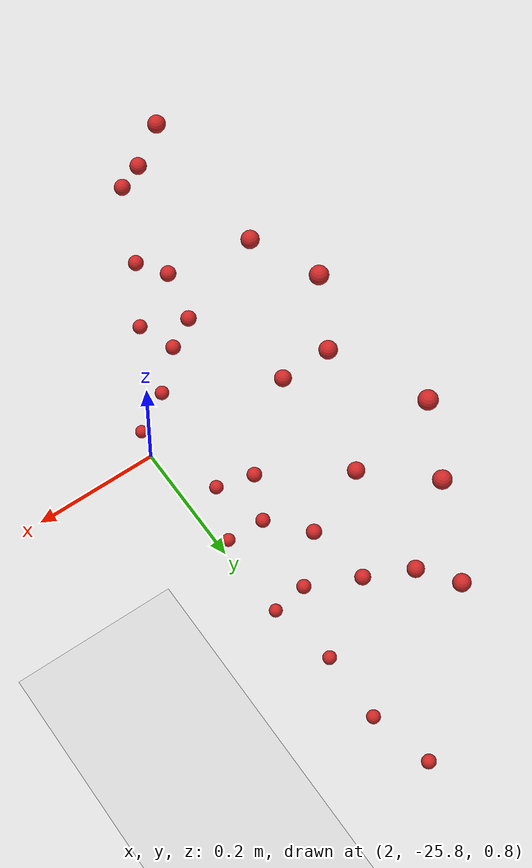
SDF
<sdf version="1.4">
 <world name="default">
  <model name="ground_plane">
   <static>1</static>
   <link name="link">
    <collision name="collision">
     <geometry><plane><normal>0 0 1</normal><size>100 100</size></plane></geometry>
     <surface><friction><ode><mu>100</mu><mu2>50</mu2></ode></friction></surface>
    </collision>
    <visual name="visual">
     <cast_shadows>0</cast_shadows>
     <geometry><plane><normal>0 0 1</normal><size>100 100</size></plane></geometry>
     <material>
      <script><uri>file://media/materials/scripts/gazebo.material</uri><name>Gazebo/Grey</name></script>
     </material>
    </visual>
    <velocity_decay><linear>0</linear><angular>0</angular></velocity_decay>
   </link>
  </model>
  <model name="apple592">
   <link name="my_apple">
    <inertial>
     <pose>2 0 0 0 -0 0</pose>
     <mass>1</mass>
     <inertia><ixx>1</ixx><ixy>0</ixy><ixz>0</ixz><iyy>1</iyy><iyz>0</iyz><izz>1</izz></inertia>
    </inertial>
    <collision name="my_apple_collision">
     <pose>2 0 1 0 -0 0</pose>
     <geometry><sphere><radius>0.01</radius></sphere></geometry>
    </collision>
    <visual name="my_apple_visual">
     <pose>2 0 1 0 -0 0</pose>
     <geometry><sphere><radius>0.01</radius></sphere></geometry>
     <material><script><name>Gazebo/Red</name><uri>__default__</uri></script></material>
    </visual>
    <gravity>0</gravity>
    <velocity_decay><linear>0</linear><angular>0</angular></velocity_decay>
   </link>
   <pose>0 -25.8256 0.449866 0 -0 0</pose>
   <static>0</static>
  </model>
  <model name="apple594">
   <link name="my_apple">
    <inertial>
     <pose>2 0 0 0 -0 0</pose>
     <mass>1</mass>
     <inertia><ixx>1</ixx><ixy>0</ixy><ixz>0</ixz><iyy>1</iyy><iyz>0</iyz><izz>1</izz></inertia>
    </inertial>
    <collision name="my_apple_collision">
     <pose>2 0 1 0 -0 0</pose>
     <geometry><sphere><radius>0.01</radius></sphere></geometry>
    </collision>
    <visual name="my_apple_visual">
     <pose>2 0 1 0 -0 0</pose>
     <geometry><sphere><radius>0.01</radius></sphere></geometry>
     <material><script><name>Gazebo/Red</name><uri>__default__</uri></script></material>
    </visual>
    <gravity>0</gravity>
    <velocity_decay><linear>0</linear><angular>0</angular></velocity_decay>
   </link>
   <pose>0 -25.8065 0.162456 0 -0 0</pose>
   <static>0</static>
  </model>
  <model name="apple596">
   <link name="my_apple">
    <inertial>
     <pose>2 0 0 0 -0 0</pose>
     <mass>1</mass>
     <inertia><ixx>1</ixx><ixy>0</ixy><ixz>0</ixz><iyy>1</iyy><iyz>0</iyz><izz>1</izz></inertia>
    </inertial>
    <collision name="my_apple_collision">
     <pose>2 0 1 0 -0 0</pose>
     <geometry><sphere><radius>0.01</radius></sphere></geometry>
    </collision>
    <visual name="my_apple_visual">
     <pose>2 0 1 0 -0 0</pose>
     <geometry><sphere><radius>0.01</radius></sphere></geometry>
     <material><script><name>Gazebo/Red</name><uri>__default__</uri></script></material>
    </visual>
    <gravity>0</gravity>
    <velocity_decay><linear>0</linear><angular>0</angular></velocity_decay>
   </link>
   <pose>0 -25.8057 0.313953 0 -0 0</pose>
   <static>0</static>
  </model>
  <model name="apple597">
   <link name="my_apple">
    <inertial>
     <pose>2 0 0 0 -0 0</pose>
     <mass>1</mass>
     <inertia><ixx>1</ixx><ixy>0</ixy><ixz>0</ixz><iyy>1</iyy><iyz>0</iyz><izz>1</izz></inertia>
    </inertial>
    <collision name="my_apple_collision">
     <pose>2 0 1 0 -0 0</pose>
     <geometry><sphere><radius>0.01</radius></sphere></geometry>
    </collision>
    <visual name="my_apple_visual">
     <pose>2 0 1 0 -0 0</pose>
     <geometry><sphere><radius>0.01</radius></sphere></geometry>
     <material><script><name>Gazebo/Red</name><uri>__default__</uri></script></material>
    </visual>
    <gravity>0</gravity>
    <velocity_decay><linear>0</linear><angular>0</angular></velocity_decay>
   </link>
   <pose>0 -25.7848 0.534704 0 -0 0</pose>
   <static>0</static>
  </model>
  <model name="apple598">
   <link name="my_apple">
    <inertial>
     <pose>2 0 0 0 -0 0</pose>
     <mass>1</mass>
     <inertia><ixx>1</ixx><ixy>0</ixy><ixz>0</ixz><iyy>1</iyy><iyz>0</iyz><izz>1</izz></inertia>
    </inertial>
    <collision name="my_apple_collision">
     <pose>2 0 1 0 -0 0</pose>
     <geometry><sphere><radius>0.01</radius></sphere></geometry>
    </collision>
    <visual name="my_apple_visual">
     <pose>2 0 1 0 -0 0</pose>
     <geometry><sphere><radius>0.01</radius></sphere></geometry>
     <material><script><name>Gazebo/Red</name><uri>__default__</uri></script></material>
    </visual>
    <gravity>0</gravity>
    <velocity_decay><linear>0</linear><angular>0</angular></velocity_decay>
   </link>
   <pose>0 -25.729 0.383208 0 -0 0</pose>
   <static>0</static>
  </model>
  <model name="apple599">
   <link name="my_apple">
    <inertial>
     <pose>2 0 0 0 -0 0</pose>
     <mass>1</mass>
     <inertia><ixx>1</ixx><ixy>0</ixy><ixz>0</ixz><iyy>1</iyy><iyz>0</iyz><izz>1</izz></inertia>
    </inertial>
    <collision name="my_apple_collision">
     <pose>2 0 1 0 -0 0</pose>
     <geometry><sphere><radius>0.01</radius></sphere></geometry>
    </collision>
    <visual name="my_apple_visual">
     <pose>2 0 1 0 -0 0</pose>
     <geometry><sphere><radius>0.01</radius></sphere></geometry>
     <material><script><name>Gazebo/Red</name><uri>__default__</uri></script></material>
    </visual>
    <gravity>0</gravity>
    <velocity_decay><linear>0</linear><angular>0</angular></velocity_decay>
   </link>
   <pose>0 -25.6856 0.338192 0 -0 0</pose>
   <static>0</static>
  </model>
  <model name="apple601">
   <link name="my_apple">
    <inertial>
     <pose>2 0 0 0 -0 0</pose>
     <mass>1</mass>
     <inertia><ixx>1</ixx><ixy>0</ixy><ixz>0</ixz><iyy>1</iyy><iyz>0</iyz><izz>1</izz></inertia>
    </inertial>
    <collision name="my_apple_collision">
     <pose>2 0 1 0 -0 0</pose>
     <geometry><sphere><radius>0.01</radius></sphere></geometry>
    </collision>
    <visual name="my_apple_visual">
     <pose>2 0 1 0 -0 0</pose>
     <geometry><sphere><radius>0.01</radius></sphere></geometry>
     <material><script><name>Gazebo/Red</name><uri>__default__</uri></script></material>
    </visual>
    <gravity>0</gravity>
    <velocity_decay><linear>0</linear><angular>0</angular></velocity_decay>
   </link>
   <pose>0 -25.5922 -0.136776 0 -0 0</pose>
   <static>0</static>
  </model>
  <model name="apple602">
   <link name="my_apple">
    <inertial>
     <pose>2 0 0 0 -0 0</pose>
     <mass>1</mass>
     <inertia><ixx>1</ixx><ixy>0</ixy><ixz>0</ixz><iyy>1</iyy><iyz>0</iyz><izz>1</izz></inertia>
    </inertial>
    <collision name="my_apple_collision">
     <pose>2 0 1 0 -0 0</pose>
     <geometry><sphere><radius>0.01</radius></sphere></geometry>
    </collision>
    <visual name="my_apple_visual">
     <pose>2 0 1 0 -0 0</pose>
     <geometry><sphere><radius>0.01</radius></sphere></geometry>
     <material><script><name>Gazebo/Red</name><uri>__default__</uri></script></material>
    </visual>
    <gravity>0</gravity>
    <velocity_decay><linear>0</linear><angular>0</angular></velocity_decay>
   </link>
   <pose>0 -25.6238 -0.018761 0 -0 0</pose>
   <static>0</static>
  </model>
  <model name="apple603">
   <link name="my_apple">
    <inertial>
     <pose>2 0 0 0 -0 0</pose>
     <mass>1</mass>
     <inertia><ixx>1</ixx><ixy>0</ixy><ixz>0</ixz><iyy>1</iyy><iyz>0</iyz><izz>1</izz></inertia>
    </inertial>
    <collision name="my_apple_collision">
     <pose>2 0 1 0 -0 0</pose>
     <geometry><sphere><radius>0.01</radius></sphere></geometry>
    </collision>
    <visual name="my_apple_visual">
     <pose>2 0 1 0 -0 0</pose>
     <geometry><sphere><radius>0.01</radius></sphere></geometry>
     <material><script><name>Gazebo/Red</name><uri>__default__</uri></script></material>
    </visual>
    <gravity>0</gravity>
    <velocity_decay><linear>0</linear><angular>0</angular></velocity_decay>
   </link>
   <pose>0 -25.7581 0.053795 0 -0 0</pose>
   <static>0</static>
  </model>
  <model name="apple604">
   <link name="my_apple">
    <inertial>
     <pose>2 0 0 0 -0 0</pose>
     <mass>1</mass>
     <inertia><ixx>1</ixx><ixy>0</ixy><ixz>0</ixz><iyy>1</iyy><iyz>0</iyz><izz>1</izz></inertia>
    </inertial>
    <collision name="my_apple_collision">
     <pose>2 0 1 0 -0 0</pose>
     <geometry><sphere><radius>0.01</radius></sphere></geometry>
    </collision>
    <visual name="my_apple_visual">
     <pose>2 0 1 0 -0 0</pose>
     <geometry><sphere><radius>0.01</radius></sphere></geometry>
     <material><script><name>Gazebo/Red</name><uri>__default__</uri></script></material>
    </visual>
    <gravity>0</gravity>
    <velocity_decay><linear>0</linear><angular>0</angular></velocity_decay>
   </link>
   <pose>0 -25.5637 0.64649 0 -0 0</pose>
   <static>0</static>
  </model>
  <model name="apple605">
   <link name="my_apple">
    <inertial>
     <pose>2 0 0 0 -0 0</pose>
     <mass>1</mass>
     <inertia><ixx>1</ixx><ixy>0</ixy><ixz>0</ixz><iyy>1</iyy><iyz>0</iyz><izz>1</izz></inertia>
    </inertial>
    <collision name="my_apple_collision">
     <pose>2 0 1 0 -0 0</pose>
     <geometry><sphere><radius>0.01</radius></sphere></geometry>
    </collision>
    <visual name="my_apple_visual">
     <pose>2 0 1 0 -0 0</pose>
     <geometry><sphere><radius>0.01</radius></sphere></geometry>
     <material><script><name>Gazebo/Red</name><uri>__default__</uri></script></material>
    </visual>
    <gravity>0</gravity>
    <velocity_decay><linear>0</linear><angular>0</angular></velocity_decay>
   </link>
   <pose>0 -25.5377 0.15553 0 -0 0</pose>
   <static>0</static>
  </model>
  <model name="apple606">
   <link name="my_apple">
    <inertial>
     <pose>2 0 0 0 -0 0</pose>
     <mass>1</mass>
     <inertia><ixx>1</ixx><ixy>0</ixy><ixz>0</ixz><iyy>1</iyy><iyz>0</iyz><izz>1</izz></inertia>
    </inertial>
    <collision name="my_apple_collision">
     <pose>2 0 1 0 -0 0</pose>
     <geometry><sphere><radius>0.01</radius></sphere></geometry>
    </collision>
    <visual name="my_apple_visual">
     <pose>2 0 1 0 -0 0</pose>
     <geometry><sphere><radius>0.01</radius></sphere></geometry>
     <material><script><name>Gazebo/Red</name><uri>__default__</uri></script></material>
    </visual>
    <gravity>0</gravity>
    <velocity_decay><linear>0</linear><angular>0</angular></velocity_decay>
   </link>
   <pose>0 -25.5143 0.060304 0 -0 0</pose>
   <static>0</static>
  </model>
  <model name="apple607">
   <link name="my_apple">
    <inertial>
     <pose>2 0 0 0 -0 0</pose>
     <mass>1</mass>
     <inertia><ixx>1</ixx><ixy>0</ixy><ixz>0</ixz><iyy>1</iyy><iyz>0</iyz><izz>1</izz></inertia>
    </inertial>
    <collision name="my_apple_collision">
     <pose>2 0 1 0 -0 0</pose>
     <geometry><sphere><radius>0.01</radius></sphere></geometry>
    </collision>
    <visual name="my_apple_visual">
     <pose>2 0 1 0 -0 0</pose>
     <geometry><sphere><radius>0.01</radius></sphere></geometry>
     <material><script><name>Gazebo/Red</name><uri>__default__</uri></script></material>
    </visual>
    <gravity>0</gravity>
    <velocity_decay><linear>0</linear><angular>0</angular></velocity_decay>
   </link>
   <pose>0 -25.8233 -0.155133 0 -0 0</pose>
   <static>0</static>
  </model>
  <model name="apple608">
   <link name="my_apple">
    <inertial>
     <pose>2 0 0 0 -0 0</pose>
     <mass>1</mass>
     <inertia><ixx>1</ixx><ixy>0</ixy><ixz>0</ixz><iyy>1</iyy><iyz>0</iyz><izz>1</izz></inertia>
    </inertial>
    <collision name="my_apple_collision">
     <pose>2 0 1 0 -0 0</pose>
     <geometry><sphere><radius>0.01</radius></sphere></geometry>
    </collision>
    <visual name="my_apple_visual">
     <pose>2 0 1 0 -0 0</pose>
     <geometry><sphere><radius>0.01</radius></sphere></geometry>
     <material><script><name>Gazebo/Red</name><uri>__default__</uri></script></material>
    </visual>
    <gravity>0</gravity>
    <velocity_decay><linear>0</linear><angular>0</angular></velocity_decay>
   </link>
   <pose>0 -25.493 0.461164 0 -0 0</pose>
   <static>0</static>
  </model>
  <model name="apple610">
   <link name="my_apple">
    <inertial>
     <pose>2 0 0 0 -0 0</pose>
     <mass>1</mass>
     <inertia><ixx>1</ixx><ixy>0</ixy><ixz>0</ixz><iyy>1</iyy><iyz>0</iyz><izz>1</izz></inertia>
    </inertial>
    <collision name="my_apple_collision">
     <pose>2 0 1 0 -0 0</pose>
     <geometry><sphere><radius>0.01</radius></sphere></geometry>
    </collision>
    <visual name="my_apple_visual">
     <pose>2 0 1 0 -0 0</pose>
     <geometry><sphere><radius>0.01</radius></sphere></geometry>
     <material><script><name>Gazebo/Red</name><uri>__default__</uri></script></material>
    </visual>
    <gravity>0</gravity>
    <velocity_decay><linear>0</linear><angular>0</angular></velocity_decay>
   </link>
   <pose>0 -25.4719 -0.165605 0 -0 0</pose>
   <static>0</static>
  </model>
  <model name="apple611">
   <link name="my_apple">
    <inertial>
     <pose>2 0 0 0 -0 0</pose>
     <mass>1</mass>
     <inertia><ixx>1</ixx><ixy>0</ixy><ixz>0</ixz><iyy>1</iyy><iyz>0</iyz><izz>1</izz></inertia>
    </inertial>
    <collision name="my_apple_collision">
     <pose>2 0 1 0 -0 0</pose>
     <geometry><sphere><radius>0.01</radius></sphere></geometry>
    </collision>
    <visual name="my_apple_visual">
     <pose>2 0 1 0 -0 0</pose>
     <geometry><sphere><radius>0.01</radius></sphere></geometry>
     <material><script><name>Gazebo/Red</name><uri>__default__</uri></script></material>
    </visual>
    <gravity>0</gravity>
    <velocity_decay><linear>0</linear><angular>0</angular></velocity_decay>
   </link>
   <pose>0 -25.4483 0.720762 0 -0 0</pose>
   <static>0</static>
  </model>
  <model name="apple612">
   <link name="my_apple">
    <inertial>
     <pose>2 0 0 0 -0 0</pose>
     <mass>1</mass>
     <inertia><ixx>1</ixx><ixy>0</ixy><ixz>0</ixz><iyy>1</iyy><iyz>0</iyz><izz>1</izz></inertia>
    </inertial>
    <collision name="my_apple_collision">
     <pose>2 0 1 0 -0 0</pose>
     <geometry><sphere><radius>0.01</radius></sphere></geometry>
    </collision>
    <visual name="my_apple_visual">
     <pose>2 0 1 0 -0 0</pose>
     <geometry><sphere><radius>0.01</radius></sphere></geometry>
     <material><script><name>Gazebo/Red</name><uri>__default__</uri></script></material>
    </visual>
    <gravity>0</gravity>
    <velocity_decay><linear>0</linear><angular>0</angular></velocity_decay>
   </link>
   <pose>0 -25.4107 0.202914 0 -0 0</pose>
   <static>0</static>
  </model>
  <model name="apple613">
   <link name="my_apple">
    <inertial>
     <pose>2 0 0 0 -0 0</pose>
     <mass>1</mass>
     <inertia><ixx>1</ixx><ixy>0</ixy><ixz>0</ixz><iyy>1</iyy><iyz>0</iyz><izz>1</izz></inertia>
    </inertial>
    <collision name="my_apple_collision">
     <pose>2 0 1 0 -0 0</pose>
     <geometry><sphere><radius>0.01</radius></sphere></geometry>
    </collision>
    <visual name="my_apple_visual">
     <pose>2 0 1 0 -0 0</pose>
     <geometry><sphere><radius>0.01</radius></sphere></geometry>
     <material><script><name>Gazebo/Red</name><uri>__default__</uri></script></material>
    </visual>
    <gravity>0</gravity>
    <velocity_decay><linear>0</linear><angular>0</angular></velocity_decay>
   </link>
   <pose>0 -25.348 -0.090444 0 -0 0</pose>
   <static>0</static>
  </model>
  <model name="apple615">
   <link name="my_apple">
    <inertial>
     <pose>2 0 0 0 -0 0</pose>
     <mass>1</mass>
     <inertia><ixx>1</ixx><ixy>0</ixy><ixz>0</ixz><iyy>1</iyy><iyz>0</iyz><izz>1</izz></inertia>
    </inertial>
    <collision name="my_apple_collision">
     <pose>2 0 1 0 -0 0</pose>
     <geometry><sphere><radius>0.01</radius></sphere></geometry>
    </collision>
    <visual name="my_apple_visual">
     <pose>2 0 1 0 -0 0</pose>
     <geometry><sphere><radius>0.01</radius></sphere></geometry>
     <material><script><name>Gazebo/Red</name><uri>__default__</uri></script></material>
    </visual>
    <gravity>0</gravity>
    <velocity_decay><linear>0</linear><angular>0</angular></velocity_decay>
   </link>
   <pose>0 -25.3149 0.242265 0 -0 0</pose>
   <static>0</static>
  </model>
  <model name="apple617">
   <link name="my_apple">
    <inertial>
     <pose>2 0 0 0 -0 0</pose>
     <mass>1</mass>
     <inertia><ixx>1</ixx><ixy>0</ixy><ixz>0</ixz><iyy>1</iyy><iyz>0</iyz><izz>1</izz></inertia>
    </inertial>
    <collision name="my_apple_collision">
     <pose>2 0 1 0 -0 0</pose>
     <geometry><sphere><radius>0.01</radius></sphere></geometry>
    </collision>
    <visual name="my_apple_visual">
     <pose>2 0 1 0 -0 0</pose>
     <geometry><sphere><radius>0.01</radius></sphere></geometry>
     <material><script><name>Gazebo/Red</name><uri>__default__</uri></script></material>
    </visual>
    <gravity>0</gravity>
    <velocity_decay><linear>0</linear><angular>0</angular></velocity_decay>
   </link>
   <pose>0 -25.234 0.62551 0 -0 0</pose>
   <static>0</static>
  </model>
  <model name="apple618">
   <link name="my_apple">
    <inertial>
     <pose>2 0 0 0 -0 0</pose>
     <mass>1</mass>
     <inertia><ixx>1</ixx><ixy>0</ixy><ixz>0</ixz><iyy>1</iyy><iyz>0</iyz><izz>1</izz></inertia>
    </inertial>
    <collision name="my_apple_collision">
     <pose>2 0 1 0 -0 0</pose>
     <geometry><sphere><radius>0.01</radius></sphere></geometry>
    </collision>
    <visual name="my_apple_visual">
     <pose>2 0 1 0 -0 0</pose>
     <geometry><sphere><radius>0.01</radius></sphere></geometry>
     <material><script><name>Gazebo/Red</name><uri>__default__</uri></script></material>
    </visual>
    <gravity>0</gravity>
    <velocity_decay><linear>0</linear><angular>0</angular></velocity_decay>
   </link>
   <pose>0 -25.1743 0.48709 0 -0 0</pose>
   <static>0</static>
  </model>
  <model name="apple619">
   <link name="my_apple">
    <inertial>
     <pose>2 0 0 0 -0 0</pose>
     <mass>1</mass>
     <inertia><ixx>1</ixx><ixy>0</ixy><ixz>0</ixz><iyy>1</iyy><iyz>0</iyz><izz>1</izz></inertia>
    </inertial>
    <collision name="my_apple_collision">
     <pose>2 0 1 0 -0 0</pose>
     <geometry><sphere><radius>0.01</radius></sphere></geometry>
    </collision>
    <visual name="my_apple_visual">
     <pose>2 0 1 0 -0 0</pose>
     <geometry><sphere><radius>0.01</radius></sphere></geometry>
     <material><script><name>Gazebo/Red</name><uri>__default__</uri></script></material>
    </visual>
    <gravity>0</gravity>
    <velocity_decay><linear>0</linear><angular>0</angular></velocity_decay>
   </link>
   <pose>0 -25.1387 -0.016445 0 -0 0</pose>
   <static>0</static>
  </model>
  <model name="apple628">
   <link name="my_apple">
    <inertial>
     <pose>2 0 0 0 -0 0</pose>
     <mass>1</mass>
     <inertia><ixx>1</ixx><ixy>0</ixy><ixz>0</ixz><iyy>1</iyy><iyz>0</iyz><izz>1</izz></inertia>
    </inertial>
    <collision name="my_apple_collision">
     <pose>2 0 1 0 -0 0</pose>
     <geometry><sphere><radius>0.01</radius></sphere></geometry>
    </collision>
    <visual name="my_apple_visual">
     <pose>2 0 1 0 -0 0</pose>
     <geometry><sphere><radius>0.01</radius></sphere></geometry>
     <material><script><name>Gazebo/Red</name><uri>__default__</uri></script></material>
    </visual>
    <gravity>0</gravity>
    <velocity_decay><linear>0</linear><angular>0</angular></velocity_decay>
   </link>
   <pose>0 -25.724 0.21989 0 -0 0</pose>
   <static>0</static>
  </model>
  <model name="apple631">
   <link name="my_apple">
    <inertial>
     <pose>2 0 0 0 -0 0</pose>
     <mass>1</mass>
     <inertia><ixx>1</ixx><ixy>0</ixy><ixz>0</ixz><iyy>1</iyy><iyz>0</iyz><izz>1</izz></inertia>
    </inertial>
    <collision name="my_apple_collision">
     <pose>2 0 1 0 -0 0</pose>
     <geometry><sphere><radius>0.01</radius></sphere></geometry>
    </collision>
    <visual name="my_apple_visual">
     <pose>2 0 1 0 -0 0</pose>
     <geometry><sphere><radius>0.01</radius></sphere></geometry>
     <material><script><name>Gazebo/Red</name><uri>__default__</uri></script></material>
    </visual>
    <gravity>0</gravity>
    <velocity_decay><linear>0</linear><angular>0</angular></velocity_decay>
   </link>
   <pose>0 -25.3545 0.455044 0 -0 0</pose>
   <static>0</static>
  </model>
  <model name="apple633">
   <link name="my_apple">
    <inertial>
     <pose>2 0 0 0 -0 0</pose>
     <mass>1</mass>
     <inertia><ixx>1</ixx><ixy>0</ixy><ixz>0</ixz><iyy>1</iyy><iyz>0</iyz><izz>1</izz></inertia>
    </inertial>
    <collision name="my_apple_collision">
     <pose>2 0 1 0 -0 0</pose>
     <geometry><sphere><radius>0.01</radius></sphere></geometry>
    </collision>
    <visual name="my_apple_visual">
     <pose>2 0 1 0 -0 0</pose>
     <geometry><sphere><radius>0.01</radius></sphere></geometry>
     <material><script><name>Gazebo/Red</name><uri>__default__</uri></script></material>
    </visual>
    <gravity>0</gravity>
    <velocity_decay><linear>0</linear><angular>0</angular></velocity_decay>
   </link>
   <pose>0 -25.2467 -0.096386 0 -0 0</pose>
   <static>0</static>
  </model>
  <model name="apple636">
   <link name="my_apple">
    <inertial>
     <pose>2 0 0 0 -0 0</pose>
     <mass>1</mass>
     <inertia><ixx>1</ixx><ixy>0</ixy><ixz>0</ixz><iyy>1</iyy><iyz>0</iyz><izz>1</izz></inertia>
    </inertial>
    <collision name="my_apple_collision">
     <pose>2 0 1 0 -0 0</pose>
     <geometry><sphere><radius>0.01</radius></sphere></geometry>
    </collision>
    <visual name="my_apple_visual">
     <pose>2 0 1 0 -0 0</pose>
     <geometry><sphere><radius>0.01</radius></sphere></geometry>
     <material><script><name>Gazebo/Red</name><uri>__default__</uri></script></material>
    </visual>
    <gravity>0</gravity>
    <velocity_decay><linear>0</linear><angular>0</angular></velocity_decay>
   </link>
   <pose>0 -25.4176 0.022214 0 -0 0</pose>
   <static>0</static>
  </model>
  <model name="apple637">
   <link name="my_apple">
    <inertial>
     <pose>2 0 0 0 -0 0</pose>
     <mass>1</mass>
     <inertia><ixx>1</ixx><ixy>0</ixy><ixz>0</ixz><iyy>1</iyy><iyz>0</iyz><izz>1</izz></inertia>
    </inertial>
    <collision name="my_apple_collision">
     <pose>2 0 1 0 -0 0</pose>
     <geometry><sphere><radius>0.01</radius></sphere></geometry>
    </collision>
    <visual name="my_apple_visual">
     <pose>2 0 1 0 -0 0</pose>
     <geometry><sphere><radius>0.01</radius></sphere></geometry>
     <material><script><name>Gazebo/Red</name><uri>__default__</uri></script></material>
    </visual>
    <gravity>0</gravity>
    <velocity_decay><linear>0</linear><angular>0</angular></velocity_decay>
   </link>
   <pose>0 -25.7401 0.655035 0 -0 0</pose>
   <static>0</static>
  </model>
  <model name="apple644">
   <link name="my_apple">
    <inertial>
     <pose>2 0 0 0 -0 0</pose>
     <mass>1</mass>
     <inertia><ixx>1</ixx><ixy>0</ixy><ixz>0</ixz><iyy>1</iyy><iyz>0</iyz><izz>1</izz></inertia>
    </inertial>
    <collision name="my_apple_collision">
     <pose>2 0 1 0 -0 0</pose>
     <geometry><sphere><radius>0.01</radius></sphere></geometry>
    </collision>
    <visual name="my_apple_visual">
     <pose>2 0 1 0 -0 0</pose>
     <geometry><sphere><radius>0.01</radius></sphere></geometry>
     <material><script><name>Gazebo/Red</name><uri>__default__</uri></script></material>
    </visual>
    <gravity>0</gravity>
    <velocity_decay><linear>0</linear><angular>0</angular></velocity_decay>
   </link>
   <pose>0 -25.4226 0.615893 0 -0 0</pose>
   <static>0</static>
  </model>
  <model name="apple658">
   <link name="my_apple">
    <inertial>
     <pose>2 0 0 0 -0 0</pose>
     <mass>1</mass>
     <inertia><ixx>1</ixx><ixy>0</ixy><ixz>0</ixz><iyy>1</iyy><iyz>0</iyz><izz>1</izz></inertia>
    </inertial>
    <collision name="my_apple_collision">
     <pose>2 0 1 0 -0 0</pose>
     <geometry><sphere><radius>0.01</radius></sphere></geometry>
    </collision>
    <visual name="my_apple_visual">
     <pose>2 0 1 0 -0 0</pose>
     <geometry><sphere><radius>0.01</radius></sphere></geometry>
     <material><script><name>Gazebo/Red</name><uri>__default__</uri></script></material>
    </visual>
    <gravity>0</gravity>
    <velocity_decay><linear>0</linear><angular>0</angular></velocity_decay>
   </link>
   <pose>0 -25.2387 0.404632 0 -0 0</pose>
   <static>0</static>
  </model>
  <model name="apple659">
   <link name="my_apple">
    <inertial>
     <pose>2 0 0 0 -0 0</pose>
     <mass>1</mass>
     <inertia><ixx>1</ixx><ixy>0</ixy><ixz>0</ixz><iyy>1</iyy><iyz>0</iyz><izz>1</izz></inertia>
    </inertial>
    <collision name="my_apple_collision">
     <pose>2 0 1 0 -0 0</pose>
     <geometry><sphere><radius>0.01</radius></sphere></geometry>
    </collision>
    <visual name="my_apple_visual">
     <pose>2 0 1 0 -0 0</pose>
     <geometry><sphere><radius>0.01</radius></sphere></geometry>
     <material><script><name>Gazebo/Red</name><uri>__default__</uri></script></material>
    </visual>
    <gravity>0</gravity>
    <velocity_decay><linear>0</linear><angular>0</angular></velocity_decay>
   </link>
   <pose>0 -25.2746 0.723841 0 -0 0</pose>
   <static>0</static>
  </model>
 </world>
</sdf>
